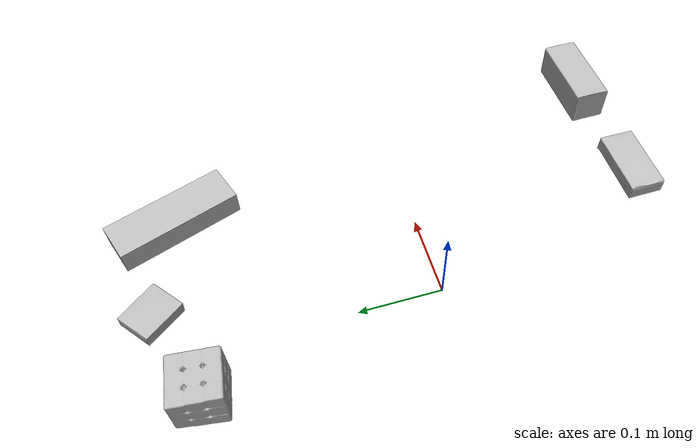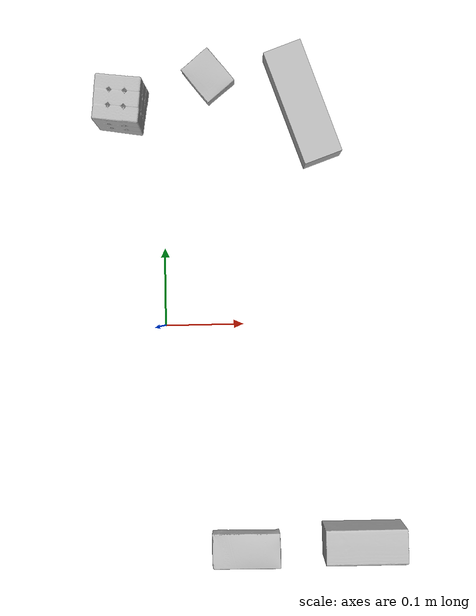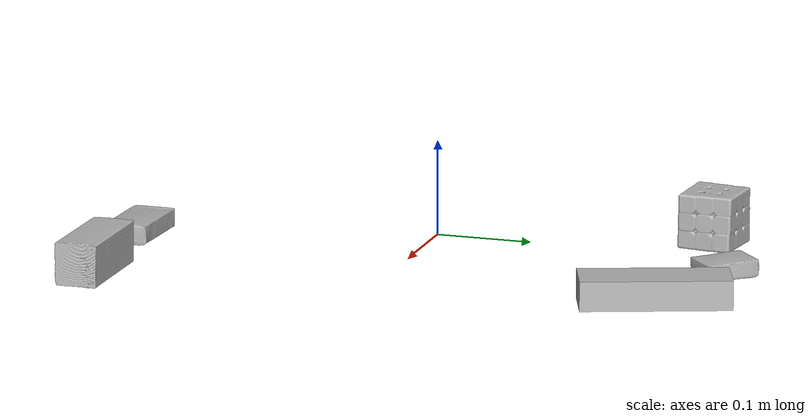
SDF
<?xml version="1.0" ?>
<sdf version="1.4">
  <world name="default">
    <light name="light1" type="point">
      <pose>0 0 1 0 0 0</pose>
      <diffuse>3 3 3 1</diffuse>
      <specular>3 3 3 1</specular>
    </light>
    <light name="light2" type="point">
      <pose>0 0.5 2 0 0 0</pose>
      <diffuse>1 1 1 1</diffuse>
      <specular>1 1 1 1</specular>
    </light>
    <light name="light3" type="point">
      <pose>0 0.5 2 0 0 0</pose>
      <diffuse>3 3 3 1</diffuse>
      <specular>3 3 3 1</specular>
    </light>
    <scene>
      <ambient>0.7 0.7 0.7</ambient>
    </scene>
    <model name="box1">
      <link name="link_box1">
        <collision name="default">
          <geometry>
            <mesh>
              <uri>model://wood_block/collision_meshes/collision.obj</uri>
              <scale>0.5 0.5 0.5</scale>
            </mesh>
          </geometry>
          <surface>
            <friction>
              <ode>
                <mu>0.5</mu>
                <mu2>0.5</mu2>
              </ode>
            </friction>
          </surface>
        </collision>
        <visual name="default">
          <geometry>
            <mesh>
              <uri>model://wood_block/visual_meshes/visual.dae</uri>
              <scale>0.5 0.5 0.5</scale>
            </mesh>
          </geometry>
        </visual>
        <inertial>
          <mass>0.21249504387378693</mass>
          <pose>-2.906657528001233e-06 -0.00028540470520965755 0.00013204290007706732 -0.05220867383734612 -0.005192696375656893 -0.006861378651330705</pose>
          <inertia>
            <ixx>7.108762e-05</ixx>
            <iyy>0.00022456584</iyy>
            <izz>0.00022372584</izz>
            <ixy>0</ixy>
            <ixz>0</ixz>
            <iyz>0</iyz>
          </inertia>
        </inertial>
      </link>
      <pose>0.2499416321516037 -0.27943432331085205 0.02262926660478115 -0.005208552868052935 0.005718699977400828 0.0053040970141037085</pose>
    </model>
    <model name="box2">
      <link name="link_box2">
        <collision name="default">
          <geometry>
            <mesh>
              <uri>model://sugar_box/collision_meshes/collision.obj</uri>
              <scale>0.5 0.5 0.5</scale>
            </mesh>
          </geometry>
          <surface>
            <friction>
              <ode>
                <mu>0.5</mu>
                <mu2>0.5</mu2>
              </ode>
            </friction>
          </surface>
        </collision>
        <visual name="default">
          <geometry>
            <mesh>
              <uri>model://sugar_box/visual_meshes/visual.dae</uri>
              <scale>0.5 0.5 0.5</scale>
            </mesh>
          </geometry>
        </visual>
        <inertial>
          <mass>0.11089310050010681</mass>
          <pose>0.0005171863595023751 1.924554817378521e-05 -0.00018182402709499002 -0.0004046262999979174 0.001050663638672674 0.002615379254561693</pose>
          <inertia>
            <ixx>2.3098954e-05</ixx>
            <iyy>7.4660566e-05</iyy>
            <izz>8.9377616e-05</izz>
            <ixy>0</ixy>
            <ixz>0</ixz>
            <iyz>0</iyz>
          </inertia>
        </inertial>
      </link>
      <pose>0.09952272474765778 -0.2901335060596466 0.011399304494261742 0.0007749342290311491 -0.023433171120732926 0.0002349541975255465</pose>
    </model>
    <model name="box3">
      <link name="link_box3">
        <collision name="default">
          <geometry>
            <mesh>
              <uri>model://jenga/collision_meshes/collision.obj</uri>
              <scale>1.0 1.0 1.0</scale>
            </mesh>
          </geometry>
          <surface>
            <friction>
              <ode>
                <mu>0.5</mu>
                <mu2>0.5</mu2>
              </ode>
            </friction>
          </surface>
        </collision>
        <visual name="default">
          <geometry>
            <mesh>
              <uri>model://jenga/visual_meshes/visual.dae</uri>
              <scale>1.0 1.0 1.0</scale>
            </mesh>
          </geometry>
        </visual>
        <inertial>
          <mass>0.163609579205513</mass>
          <pose>-2.502855807051674e-07 -0.0001025000965455547 -4.0923401684267446e-05 0.0 -7.34215461761844e-07 0.0</pose>
          <inertia>
            <ixx>4.527474e-05</ixx>
            <iyy>0.00030678045</iyy>
            <izz>0.0003275142</izz>
            <ixy>0</ixy>
            <ixz>0</ixz>
            <iyz>0</iyz>
          </inertia>
        </inertial>
      </link>
      <pose>0.1800965964794159 0.2800341248512268 0.014999997802078724 2.575399365904342e-08 -9.502849012646492e-10 -1.2259548197897467</pose>
    </model>
    <model name="box4">
      <link name="link_box4">
        <collision name="default">
          <geometry>
            <mesh>
              <uri>model://rubiks_cube/collision_meshes/collision.obj</uri>
              <scale>1.0 1.0 1.0</scale>
            </mesh>
          </geometry>
          <surface>
            <friction>
              <ode>
                <mu>0.5</mu>
                <mu2>0.5</mu2>
              </ode>
            </friction>
          </surface>
        </collision>
        <visual name="default">
          <geometry>
            <mesh>
              <uri>model://rubiks_cube/visual_meshes/visual.dae</uri>
              <scale>1.0 1.0 1.0</scale>
            </mesh>
          </geometry>
        </visual>
        <inertial>
          <mass>0.25540637969970703</mass>
          <pose>2.6721041649580002e-05 5.2569666877388954e-05 -7.264316082000732e-06 -0.054671713185757496 -0.09814043055608018 -0.034455401135126476</pose>
          <inertia>
            <ixx>0.00014112917</ixx>
            <iyy>0.000140471</iyy>
            <izz>0.00014229867</izz>
            <ixy>0</ixy>
            <ixz>0</ixz>
            <iyz>0</iyz>
          </inertia>
        </inertial>
      </link>
      <pose>-0.04978186637163162 0.2799060046672821 0.02867901138961315 -1.7181040362568055e-06 4.0183123132625804e-07 1.4565339064059932</pose>
    </model>
    <model name="box5">
      <link name="link_box5">
        <collision name="default">
          <geometry>
            <mesh>
              <uri>model://pudding_box/collision_meshes/collision.obj</uri>
              <scale>0.5 0.5 0.5</scale>
            </mesh>
          </geometry>
          <surface>
            <friction>
              <ode>
                <mu>0.5</mu>
                <mu2>0.5</mu2>
              </ode>
            </friction>
          </surface>
        </collision>
        <visual name="default">
          <geometry>
            <mesh>
              <uri>model://pudding_box/visual_meshes/visual.dae</uri>
              <scale>0.5 0.5 0.5</scale>
            </mesh>
          </geometry>
        </visual>
        <inertial>
          <mass>0.04848850890994072</mass>
          <pose>0.00024474109522998333 0.000403394311433658 -0.0002594413817860186 0.0052131017882315455 -0.0066037973363940366 0.020079830752013892</pose>
          <inertia>
            <ixx>1.370344e-05</ixx>
            <iyy>9.219772e-06</iyy>
            <izz>2.023671e-05</izz>
            <ixy>0</ixy>
            <ixz>0</ixz>
            <iyz>0</iyz>
          </inertia>
        </inertial>
      </link>
      <pose>0.05996295437216759 0.3196095824241638 0.00986290629953146 0.02234860954236947 -0.01139162313555349 0.6828292883745396</pose>
    </model>
  </world>
</sdf>
